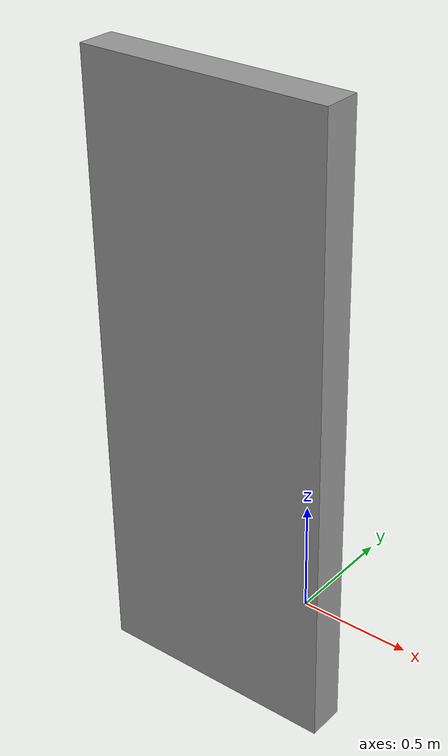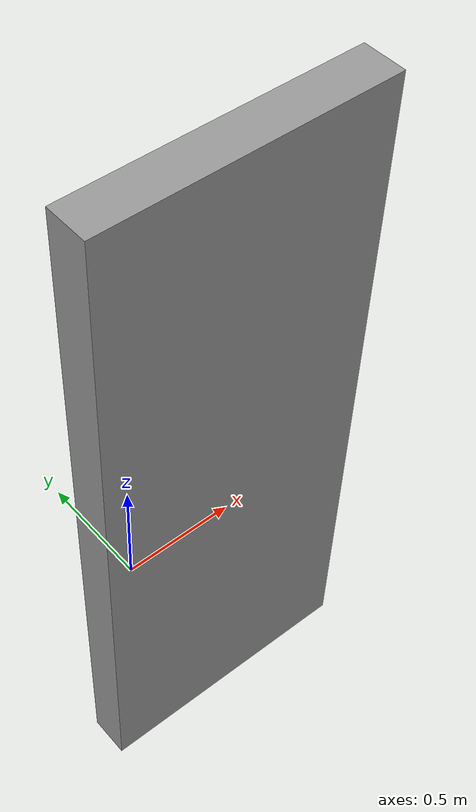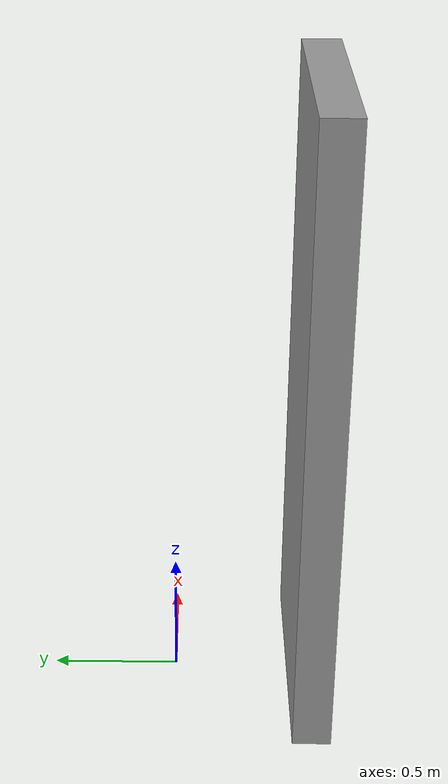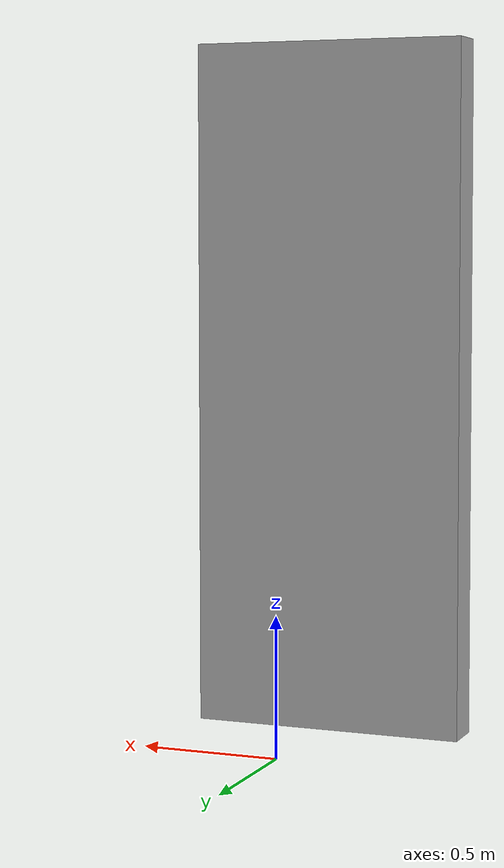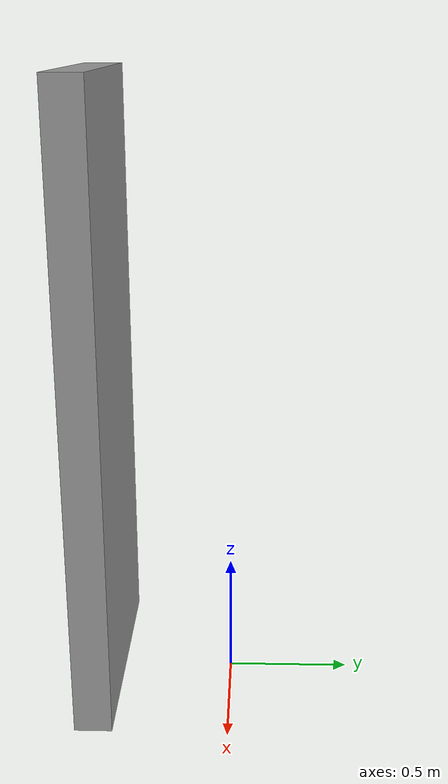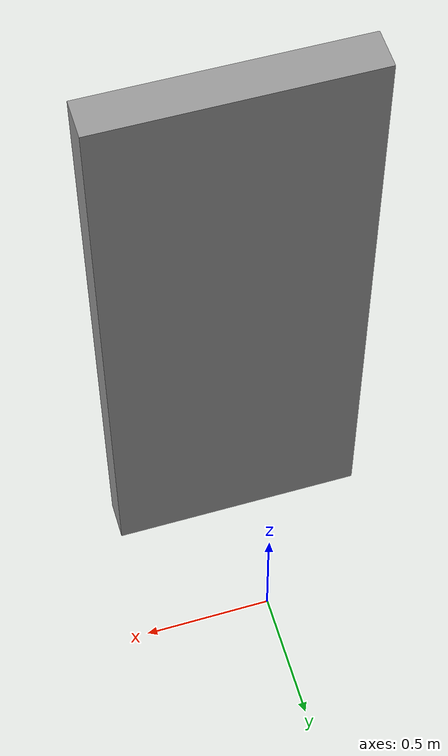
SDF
<?xml version='1.0'?>
<sdf version='1.7'>
  <model name='one_m_wall'>
    <pose>-0.012736 -0.304314 0 0 -0 0</pose>
    <link name='Wall_1'>
      <collision name='Wall_1_Collision'>
        <geometry>
          <box>
            <size>1 0.15 2.5</size>
          </box>
        </geometry>
        <pose>0 0 1.25 0 -0 0</pose>
      </collision>
      <visual name='Wall_1_Visual'>
        <pose>0 0 1.25 0 -0 0</pose>
        <geometry>
          <box>
            <size>1 0.15 2.5</size>
          </box>
        </geometry>
        <material>
          <script>
            <uri>file://media/materials/scripts/gazebo.material</uri>
            <name>Gazebo/Grey</name>
          </script>
          <ambient>1 1 1 1</ambient>
        </material>
        <meta>
          <layer>0</layer>
        </meta>
      </visual>
      <pose>0 -0.229314 0 0 -0 0</pose>
    </link>
    <static>1</static>
  </model>
</sdf>
